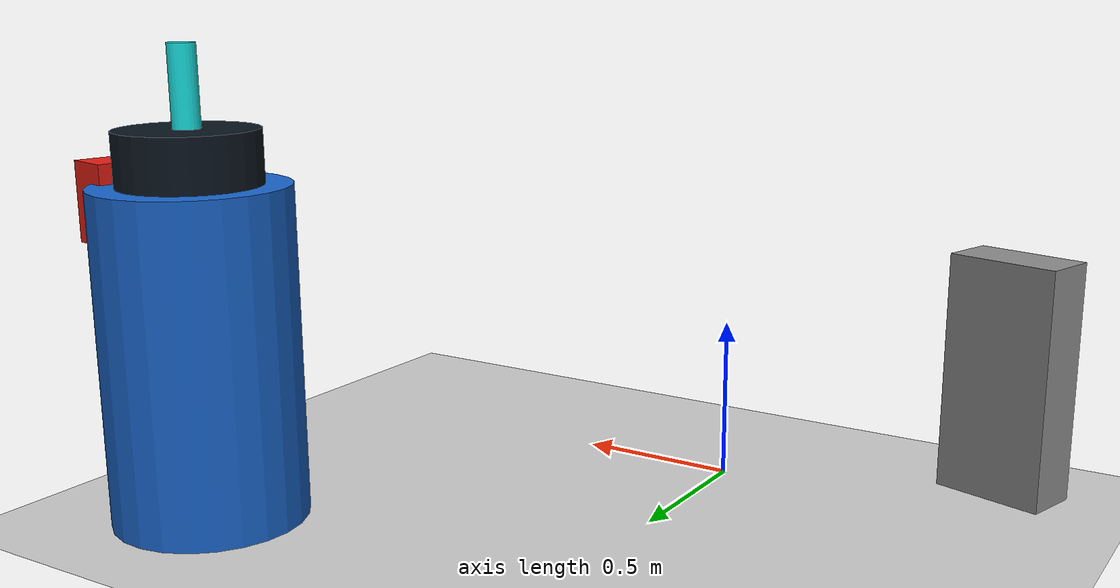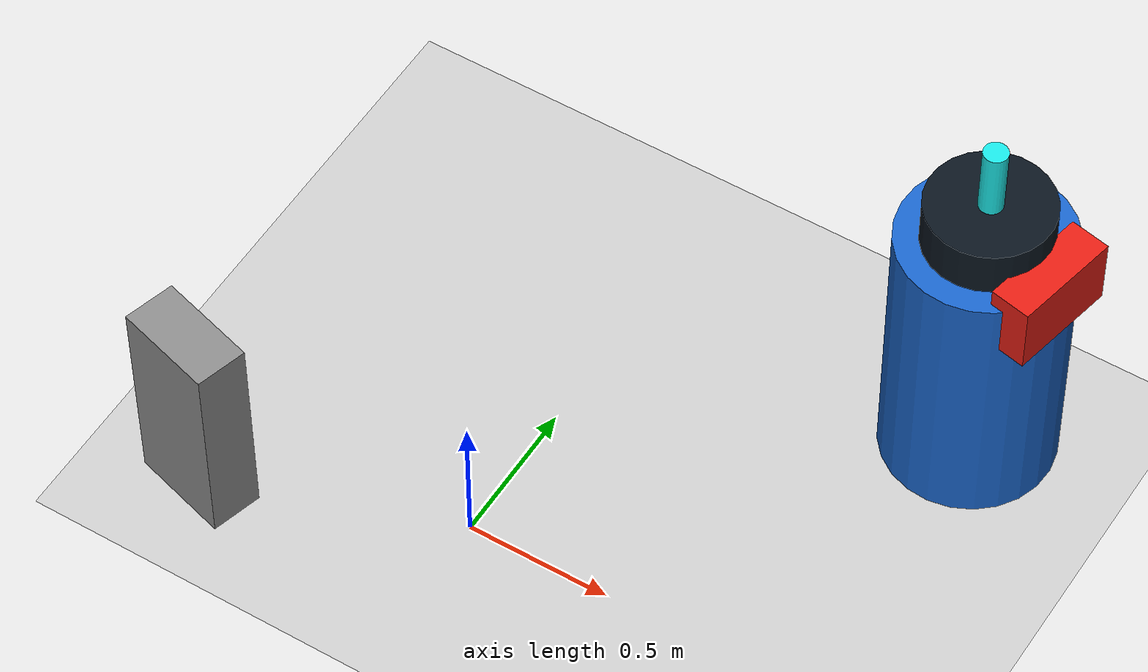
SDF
<sdf version="1.7">
 <world name="default">
  <plugin name="socnav_plugin" filename="libSocNavPlugin.so">
   <robot_name>robot</robot_name>
   <trajectory_file>/home/hunav_gz_classic_ws/SocNav3_trajectories/src6/000003869.json</trajectory_file>
   <human_slots>3</human_slots>
   <goal_angle_mesh>
    <angle_threshold>1.39905407324</angle_threshold>
    <uri>/home/hunav_gz_classic_ws/src/socnav_gazebo_reproducer/meshes/000003869_goal_angle_00.stl</uri>
   </goal_angle_mesh>
  </plugin>
  <light name="sun" type="directional">
   <pose>0 0 10 0 -0 0</pose>
   <diffuse>0.8 0.8 0.8 1</diffuse>
   <specular>0.2 0.2 0.2 1</specular>
   <attenuation>
    <range>1000</range>
    <constant>0.9</constant>
    <linear>0.01</linear>
    <quadratic>0.001</quadratic>
   </attenuation>
   <direction>-0.5 0.1 -0.9</direction>
   <spot><inner_angle>0</inner_angle><outer_angle>0</outer_angle><falloff>0</falloff></spot>
  </light>
  <model name="ground_plane">
   <static>1</static>
   <link name="link">
    <collision name="collision">
     <geometry><plane><normal>0 0 1</normal><size>100 100</size></plane></geometry>
     <surface><friction><ode><mu>100</mu><mu2>50</mu2></ode></friction></surface>
    </collision>
    <visual name="visual">
     <cast_shadows>0</cast_shadows>
     <geometry><plane><normal>0 0 1</normal><size>100 100</size></plane></geometry>
     <material>
      <script><uri>file://media/materials/scripts/kitchen.material</uri><name>Kitchen/CounterTop_H</name></script>
     </material>
    </visual>
   </link>
  </model>
  <gravity>0 0 -9.8</gravity>
  <magnetic_field>6e-06 2.3e-05 -4.2e-05</magnetic_field>
  <atmosphere type="adiabatic"/>
  <physics type="ode">
   <max_step_size>0.001</max_step_size>
   <real_time_factor>1</real_time_factor>
   <real_time_update_rate>1000</real_time_update_rate>
  </physics>
  <scene><ambient>0.4 0.4 0.4 1</ambient><background>0.7 0.7 0.7 1</background><shadows>1</shadows></scene>
  <audio><device>default</device></audio>
  <spherical_coordinates>
   <surface_model>EARTH_WGS84</surface_model>
   <latitude_deg>0</latitude_deg>
   <longitude_deg>0</longitude_deg>
   <elevation>0</elevation>
   <heading_deg>0</heading_deg>
  </spherical_coordinates>
  <model name="robot">
   <pose>1.1500418251771773 1.132344126709145 0.5 0 0 -0.2056323995019682</pose>
   <link name="link">
    <collision name="collision">
     <geometry><cylinder><radius>0.2896710401046132</radius><length>1.0</length></cylinder></geometry>
    </collision>
    <visual name="visual">
     <geometry><cylinder><radius>0.2896710401046132</radius><length>1.0</length></cylinder></geometry>
     <material><ambient>0.1 0.4 0.8 1</ambient><diffuse>0.1 0.4 0.8 1</diffuse></material>
    </visual>
    <visual name="robot_top">
     <pose>0 0 0.58 0 0 0</pose>
     <geometry><cylinder><radius>0.20856314887532149</radius><length>0.16</length></cylinder></geometry>
     <material><ambient>0.04 0.08 0.12 1</ambient><diffuse>0.04 0.08 0.12 1</diffuse></material>
    </visual>
    <visual name="robot_front">
     <pose>0.24332367368787508 0 0.44 0 0 0</pose>
     <geometry><box><size>0.13904209925021432 0.3707789313339049 0.24</size></box></geometry>
     <material><ambient>0.9 0.12 0.08 1</ambient><diffuse>0.9 0.12 0.08 1</diffuse></material>
    </visual>
    <visual name="robot_sensor">
     <pose>0 0 0.78 0 0 0</pose>
     <geometry><cylinder><radius>0.04055394561464585</radius><length>0.24</length></cylinder></geometry>
     <material><ambient>0.1 0.9 0.9 1</ambient><diffuse>0.1 0.9 0.9 1</diffuse></material>
    </visual>
   </link>
  </model>
  <model name="static_object_0">
   <static>true</static>
   <pose>-0.8200778332388557 -0.2964819036959806 0.375 0 0 -3.4204342513501826</pose>
   <link name="link">
    <collision name="collision"><geometry><box><size>0.35 0.18 0.75</size></box></geometry></collision>
    <visual name="visual">
     <geometry><box><size>0.35 0.18 0.75</size></box></geometry>
     <material><ambient>0.55 0.55 0.55 1</ambient><diffuse>0.55 0.55 0.55 1</diffuse></material>
    </visual>
   </link>
  </model>
  <model name="simple_world_test"><static>1</static></model>
 </world>
</sdf>
